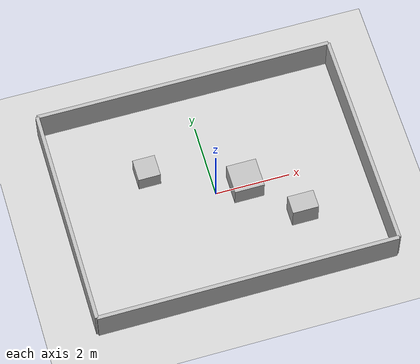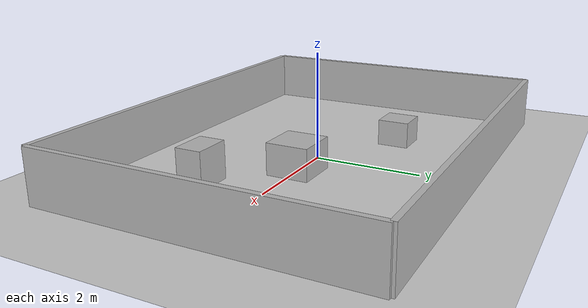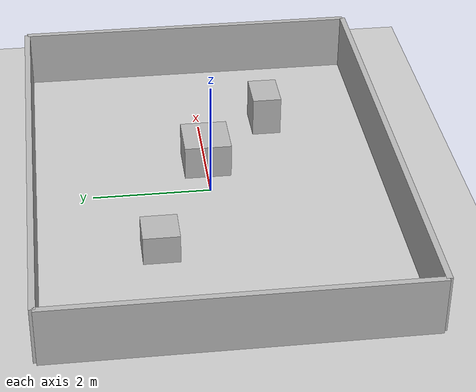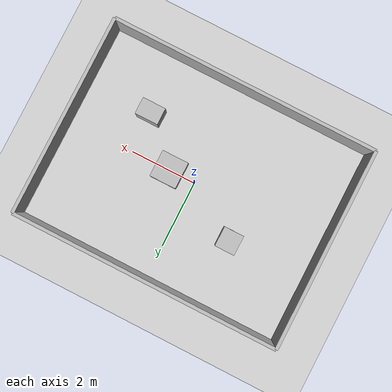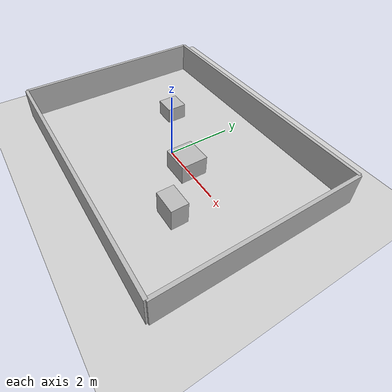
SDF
<?xml version="1.0" ?>
<sdf version="1.6">
  <world name="leap1_room">
    <include>
      <uri>model://ground_plane</uri>
    </include>
    <include>
      <uri>model://sun</uri>
    </include>

    <physics type="ode">
      <real_time_update_rate>1000.0</real_time_update_rate>
      <max_step_size>0.001</max_step_size>
      <real_time_factor>1.0</real_time_factor>
    </physics>

    <scene>
      <ambient>0.4 0.4 0.4 1</ambient>
      <background>0.8 0.8 0.8 1</background>
    </scene>

    <model name="north_wall">
      <static>true</static>
      <pose>0 3 0.5 0 0 0</pose>
      <link name="link">
        <collision name="collision">
          <geometry>
            <box><size>8 0.1 1</size></box>
          </geometry>
        </collision>
        <visual name="visual">
          <geometry>
            <box><size>8 0.1 1</size></box>
          </geometry>
        </visual>
      </link>
    </model>

    <model name="south_wall">
      <static>true</static>
      <pose>0 -3 0.5 0 0 0</pose>
      <link name="link">
        <collision name="collision">
          <geometry>
            <box><size>8 0.1 1</size></box>
          </geometry>
        </collision>
        <visual name="visual">
          <geometry>
            <box><size>8 0.1 1</size></box>
          </geometry>
        </visual>
      </link>
    </model>

    <model name="east_wall">
      <static>true</static>
      <pose>4 0 0.5 0 0 0</pose>
      <link name="link">
        <collision name="collision">
          <geometry>
            <box><size>0.1 6 1</size></box>
          </geometry>
        </collision>
        <visual name="visual">
          <geometry>
            <box><size>0.1 6 1</size></box>
          </geometry>
        </visual>
      </link>
    </model>

    <model name="west_wall">
      <static>true</static>
      <pose>-4 0 0.5 0 0 0</pose>
      <link name="link">
        <collision name="collision">
          <geometry>
            <box><size>0.1 6 1</size></box>
          </geometry>
        </collision>
        <visual name="visual">
          <geometry>
            <box><size>0.1 6 1</size></box>
          </geometry>
        </visual>
      </link>
    </model>

    <model name="center_block">
      <static>true</static>
      <pose>0.8 0.0 0.3 0 0 0</pose>
      <link name="link">
        <collision name="collision">
          <geometry>
            <box><size>0.8 0.8 0.6</size></box>
          </geometry>
        </collision>
        <visual name="visual">
          <geometry>
            <box><size>0.8 0.8 0.6</size></box>
          </geometry>
        </visual>
      </link>
    </model>

    <model name="left_block">
      <static>true</static>
      <pose>-1.6 1.0 0.25 0 0 0</pose>
      <link name="link">
        <collision name="collision">
          <geometry>
            <box><size>0.6 0.6 0.5</size></box>
          </geometry>
        </collision>
        <visual name="visual">
          <geometry>
            <box><size>0.6 0.6 0.5</size></box>
          </geometry>
        </visual>
      </link>
    </model>

    <model name="right_block">
      <static>true</static>
      <pose>2.0 -1.2 0.35 0 0 0</pose>
      <link name="link">
        <collision name="collision">
          <geometry>
            <box><size>0.7 0.5 0.7</size></box>
          </geometry>
        </collision>
        <visual name="visual">
          <geometry>
            <box><size>0.7 0.5 0.7</size></box>
          </geometry>
        </visual>
      </link>
    </model>
  </world>
</sdf>
